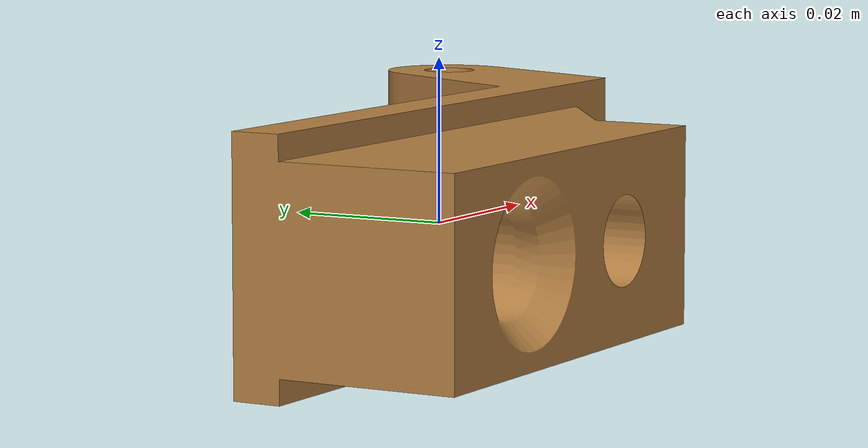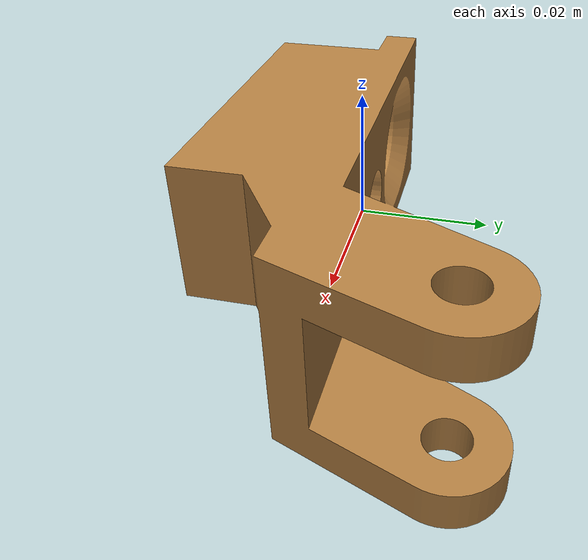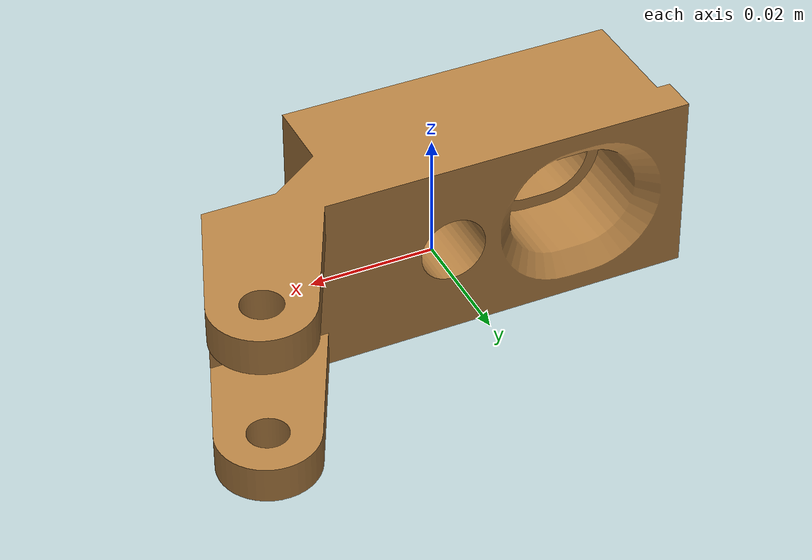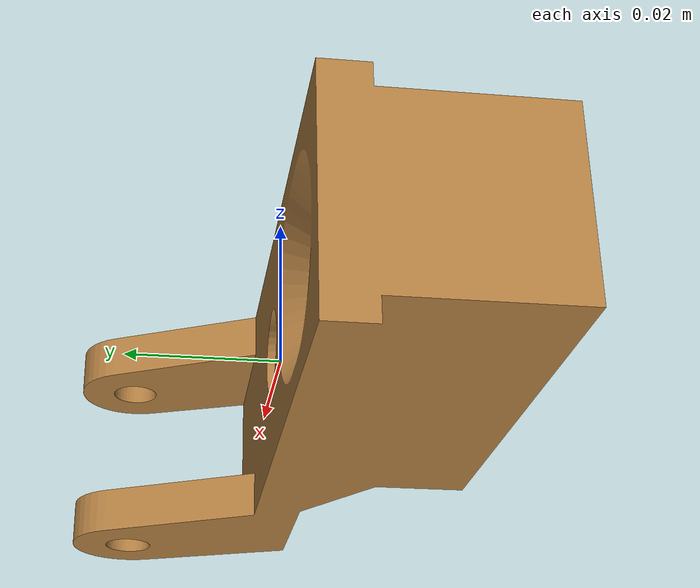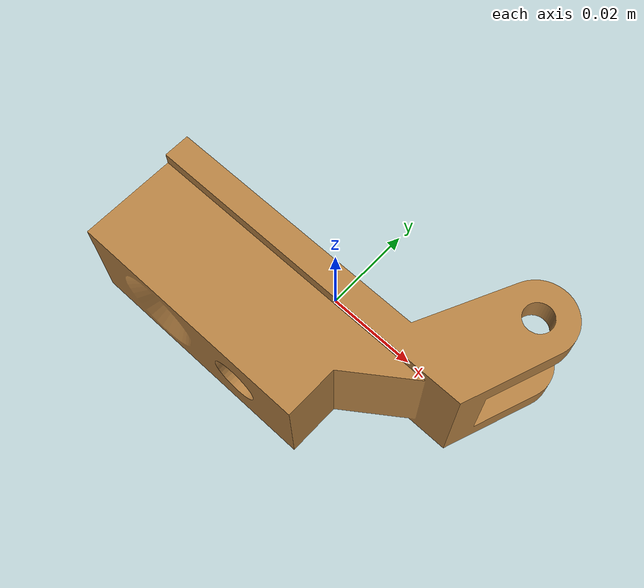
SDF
<?xml version="1.0" ?>
<sdf version="1.4">
	<model name='brazo_control_0_086m'>
		<pose> 0 0 0 0 0 0 </pose>
		<link name="link">
			<inertial>
				<mass> 0.10001 </mass>
				<pose> -0.00295 -0.00818 0 0 0 0 </pose>
				<inertia>
					<ixx> 0.00003 </ixx>
					<ixy> 0.00002 </ixy>
					<ixz> 0.0 </ixz>
					<iyy> 0.00006 </iyy>
					<iyz> 0 </iyz>
					<izz> 0.00007 </izz>
				</inertia>
			</inertial>

			<collision name="collision">
				<geometry>
					<mesh>
						<uri> /home/kevin/research/gazebo/evaluation_platform/models/brazo_control_0_086m/meshes/brazo_control_0_086m_collision6.dae </uri>
						<scale> 1 1 1 </scale>
					</mesh>
				</geometry>
				<surface>
					<bounce>
						<restitution_coefficient> 0.1 </restitution_coefficient>
					</bounce>
					<friction>
						<ode>
							<mu> 0.9 </mu>
							<mu2> 0.9 </mu2>
						</ode>
					</friction>

				</surface>
			</collision>

			<visual name="visual">
				<material>
					<ambient> 0.71 0.506 0.2627 1 </ambient>
					<diffuse> 0.71 0.506 0.2627 1 </diffuse>
				</material>
				<geometry>
					<mesh>
						<uri> /home/kevin/research/gazebo/evaluation_platform/models/brazo_control_0_086m/meshes/brazo_control_0_086m.dae </uri>
						<scale> 1 1 1 </scale>
					</mesh>
				</geometry>
			</visual>
		</link>
	</model>
</sdf>
